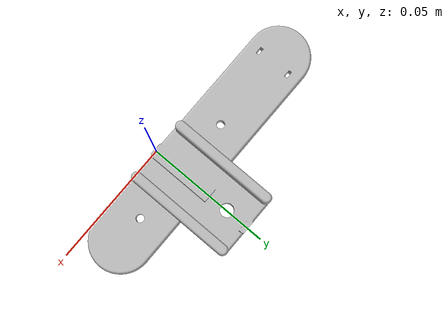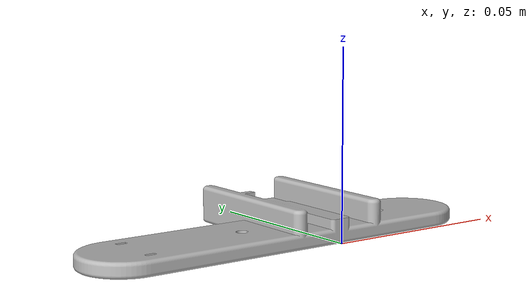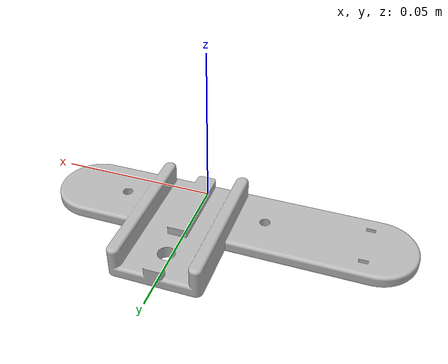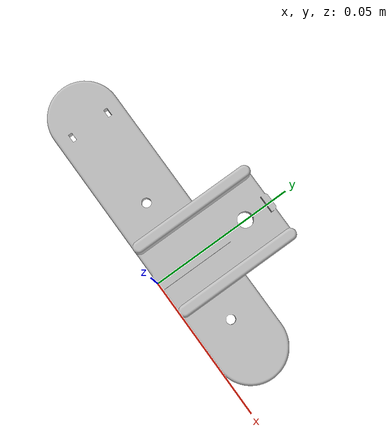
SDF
<sdf version='1.7'>
    <model name='d435_mount'>
    <static>true</static>
      <link name='d435_mount_link'>
        <inertial>
          <pose>0 0 0 0 0 0</pose>
          <mass>0.0615752</mass> <!-- Fix inertia parameters -->
        <inertia>
          <ixx>9.108e-05</ixx>
          <ixy>0</ixy>
          <ixz>0</ixz>
          <iyy>2.51e-06</iyy>
          <iyz>0</iyz>
          <izz>8.931e-05</izz>
        </inertia>
        </inertial>
        <collision name='d435_mount_link_collision'>
          <pose>0 0 0 0 0 0</pose>
          <geometry>
            <mesh>
              <scale>.001 .001 .001 </scale>
              <uri>model://d435_mount/meshes/d435_mount.stl</uri>
            </mesh>
          </geometry>
        </collision>
        <visual name='d435_mount_link_visual'>
          <pose>0 0 0 0 0 0</pose>
          <geometry>
            <mesh>
              <scale>.001 .001 .001 </scale>
              <uri>model://d435_mount/meshes/d435_mount.obj</uri>
            </mesh>
          </geometry>
          <material name="mount_black">
            <color rgba="0.9 0.9 0.9 1.0"/>
          </material>

          <cast_shadows>1</cast_shadows>
        </visual>
      </link>
    </model>
  </sdf>
